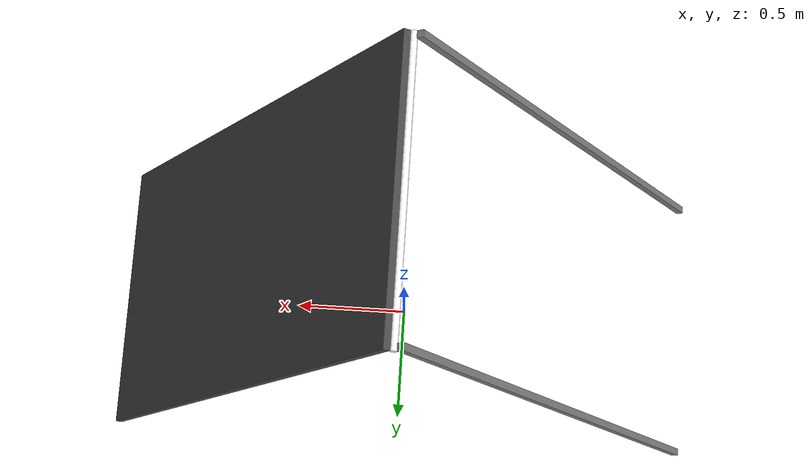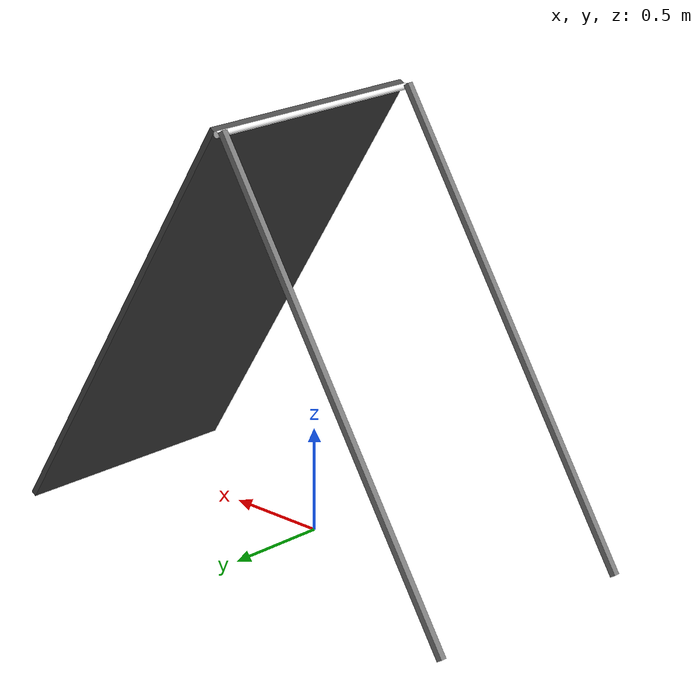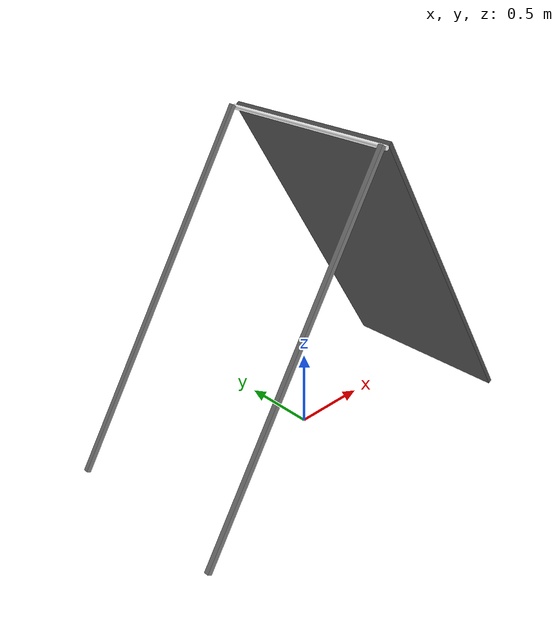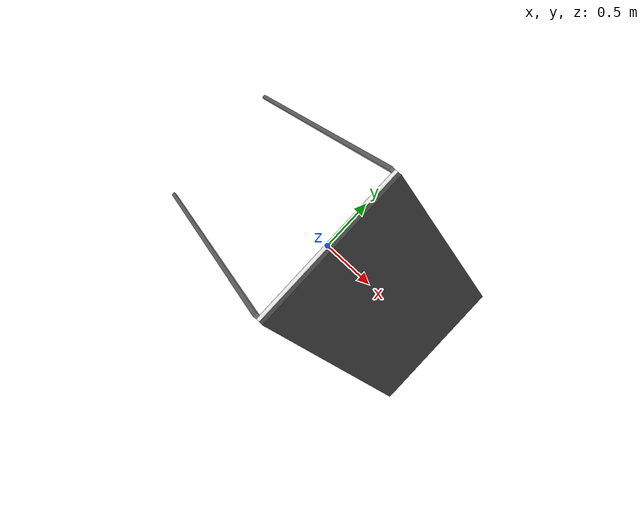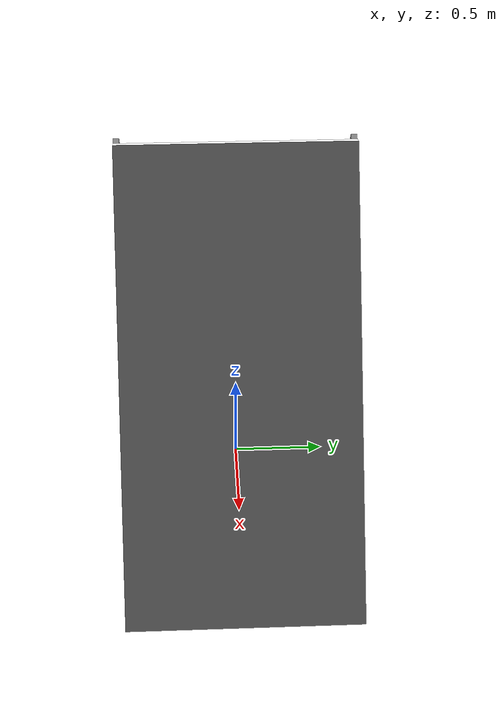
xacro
<?xml version="1.0" ?>
<robot xmlns:xacro="https://www.ros.org/wiki/xacro" name="obstacle">
    <xacro:property name="BASE_LEN" value="2.40"/>
    <xacro:property name="BASE_WID" value="1.20"/>
    <xacro:property name="BASE_HIG" value="0.03"/>

    <xacro:property name="OBS_CYLINDER_RAD" value="0.015"/>
    <xacro:property name="OBS_CYLINDER_WID" value="1.20"/>

    <xacro:property name="OBS_LEG_LEN" value="2.4"/>
    <xacro:property name="OBS_LEG_WID" value="0.03"/>
    <xacro:property name="OBS_LEG_HIG" value="0.03"/>

    <xacro:property name="PI" value="3.141592653589793"/>
    <xacro:property name="SEP_X" value="0.66"/> <!-- obstacle_base_link로부터 떨어진 길이(삼각형 변의 길이 공식 사용) -->

    <xacro:property name="BASE_MASS" value="5.0"/>
    <xacro:property name="OBS_CYLINDER_MASS" value="0.5"/>
    <xacro:property name="OBS_LEG_MASS" value="2.0"/>

    <material name="dark">
    <color rgba="0.3 0.3 0.3 1.0"/>
    </material>

    <material name="gray">
    <color rgba="0.5 0.5 0.5 1.0"/>
    </material>

    <material name="white">
    <color rgba="1.0 1.0 1.0 1.0"/>
    </material>

    <link name="obstacle_base_link"/>

    <link name="obstacle_base">
        <visual>
            <origin xyz="0 0 0" rpy="0 0 0"/>
            <geometry>
                <box size="${BASE_LEN} ${BASE_WID} ${BASE_HIG}"/>
            </geometry>
            <material name="dark"/>
        </visual>
        <collision>
            <origin xyz="0 0 0" rpy="0 0 0"/>
            <geometry>
                <box size="${BASE_LEN} ${BASE_WID} ${BASE_HIG}"/>
            </geometry>
        </collision>
        <inertial>
            <origin xyz="0 0 0" rpy="0 0 0"/>
            <mass value="${BASE_MASS}"/>
            <inertia
                ixx="${BASE_MASS/12.0 * (BASE_WID*BASE_WID + BASE_HIG*BASE_HIG)}"
                iyy="${BASE_MASS/12.0 * (BASE_LEN*BASE_LEN + BASE_HIG*BASE_HIG)}"
                izz="${BASE_MASS/12.0 * (BASE_LEN*BASE_LEN + BASE_WID*BASE_WID)}"
                ixy="0.0" ixz="0.0" iyz="0.0"/>
        </inertial>
    </link>

    <link name="obs_cylinder">
        <visual>
            <origin xyz="0 0 0" rpy="0 0 0"/>
            <geometry>
                <cylinder radius="${OBS_CYLINDER_RAD}" length="${OBS_CYLINDER_WID}"/>
            </geometry>
            <material name="white"/>
        </visual>

        <collision>
            <origin xyz="0 0 0" rpy="0 0 0"/>
            <geometry>
                <cylinder radius="${OBS_CYLINDER_RAD}" length="${OBS_CYLINDER_WID}"/>
            </geometry>
        </collision>

        <inertial>
            <origin xyz="0 0 0" rpy="0 0 0"/>
            <mass value="${OBS_CYLINDER_MASS}"/>
            <inertia
                ixx="${OBS_CYLINDER_MASS/12.0 * (3*OBS_CYLINDER_RAD*OBS_CYLINDER_RAD + OBS_CYLINDER_WID*OBS_CYLINDER_WID)}"
                iyy="${OBS_CYLINDER_MASS/12.0 * (3*OBS_CYLINDER_RAD*OBS_CYLINDER_RAD + OBS_CYLINDER_WID*OBS_CYLINDER_WID)}"
                izz="${OBS_CYLINDER_MASS/2.0 * OBS_CYLINDER_RAD*OBS_CYLINDER_RAD}"
                ixy="0.0" ixz="0.0" iyz="0.0"/>
        </inertial>
    </link>

    <link name="left_obs_leg">
        <visual>
            <origin xyz="0 0 0" rpy="0 0 0"/>
            <geometry>
                <box size="${OBS_LEG_LEN} ${OBS_LEG_WID} ${OBS_LEG_HIG}"/>
            </geometry>
            <material name="gray"/>
        </visual>

        <collision>
            <origin xyz="0 0 0" rpy="0 0 0"/>
            <geometry>
                <box size="${OBS_LEG_LEN} ${OBS_LEG_WID} ${OBS_LEG_HIG}"/>
            </geometry>
        </collision>

        <inertial>
            <origin xyz="0 0 0" rpy="0 0 0"/>
            <mass value="${OBS_LEG_MASS}"/>
            <inertia
                ixx="${OBS_LEG_MASS/12.0 * (OBS_LEG_WID*OBS_LEG_WID + OBS_LEG_HIG*OBS_LEG_HIG)}"
                iyy="${OBS_LEG_MASS/12.0 * (OBS_LEG_LEN*OBS_LEG_LEN + OBS_LEG_HIG*OBS_LEG_HIG)}"
                izz="${OBS_LEG_MASS/12.0 * (OBS_LEG_LEN*OBS_LEG_LEN + OBS_LEG_WID*OBS_LEG_WID)}"
                ixy="0.0" ixz="0.0" iyz="0.0"/>
        </inertial>
    </link>

    <link name="right_obs_leg">
        <visual>
            <origin xyz="0 0 0" rpy="0 0 0"/>
            <geometry>
                <box size="${OBS_LEG_LEN} ${OBS_LEG_WID} ${OBS_LEG_HIG}"/>
            </geometry>
            <material name="gray"/>
        </visual>
        <collision>
            <origin xyz="0 0 0" rpy="0 0 0"/>
            <geometry>
                <box size="${OBS_LEG_LEN} ${OBS_LEG_WID} ${OBS_LEG_HIG}"/>
            </geometry>
        </collision>
        <inertial>
            <origin xyz="0 0 0" rpy="0 0 0"/>
            <mass value="${OBS_LEG_MASS}"/>
            <inertia
                ixx="${OBS_LEG_MASS/12.0 * (OBS_LEG_WID*OBS_LEG_WID + OBS_LEG_HIG*OBS_LEG_HIG)}"
                iyy="${OBS_LEG_MASS/12.0 * (OBS_LEG_LEN*OBS_LEG_LEN + OBS_LEG_HIG*OBS_LEG_HIG)}"
                izz="${OBS_LEG_MASS/12.0 * (OBS_LEG_LEN*OBS_LEG_LEN + OBS_LEG_WID*OBS_LEG_WID)}"
                ixy="0.0" ixz="0.0" iyz="0.0"/>
        </inertial>
    </link>

    <joint name="obstacle_base_joint" type="fixed">
        <parent link="obstacle_base_link"/>
        <child  link="obs_cylinder"/>
        <origin xyz="0 0 2.0" rpy="${90 * PI/180} 0 0"/>
    </joint>

    <joint name="obs_cylinder_base_joint" type="fixed">
        <parent link="obstacle_base_link"/>
        <child link="obstacle_base"/>
        <origin xyz="${SEP_X} 0 1" rpy="0 ${58 * PI/180} 0"/>
    </joint>

    <joint name="left_obstacle_joint" type="fixed">
        <parent link="obstacle_base_link"/>
        <child  link="left_obs_leg"/>
        <origin xyz="-${SEP_X} ${BASE_WID/2 - OBS_LEG_WID/2} 1" rpy="0 -${58 * PI/180} 0"/>
    </joint>

    <joint name="right_obstacle_joint" type="fixed">
        <parent link="obstacle_base_link"/>
        <child  link="right_obs_leg"/>
        <origin xyz="-${SEP_X} -${BASE_WID/2 - OBS_LEG_WID/2} 1" rpy="0 -${58 * PI/180} 0"/>
    </joint>
</robot>
